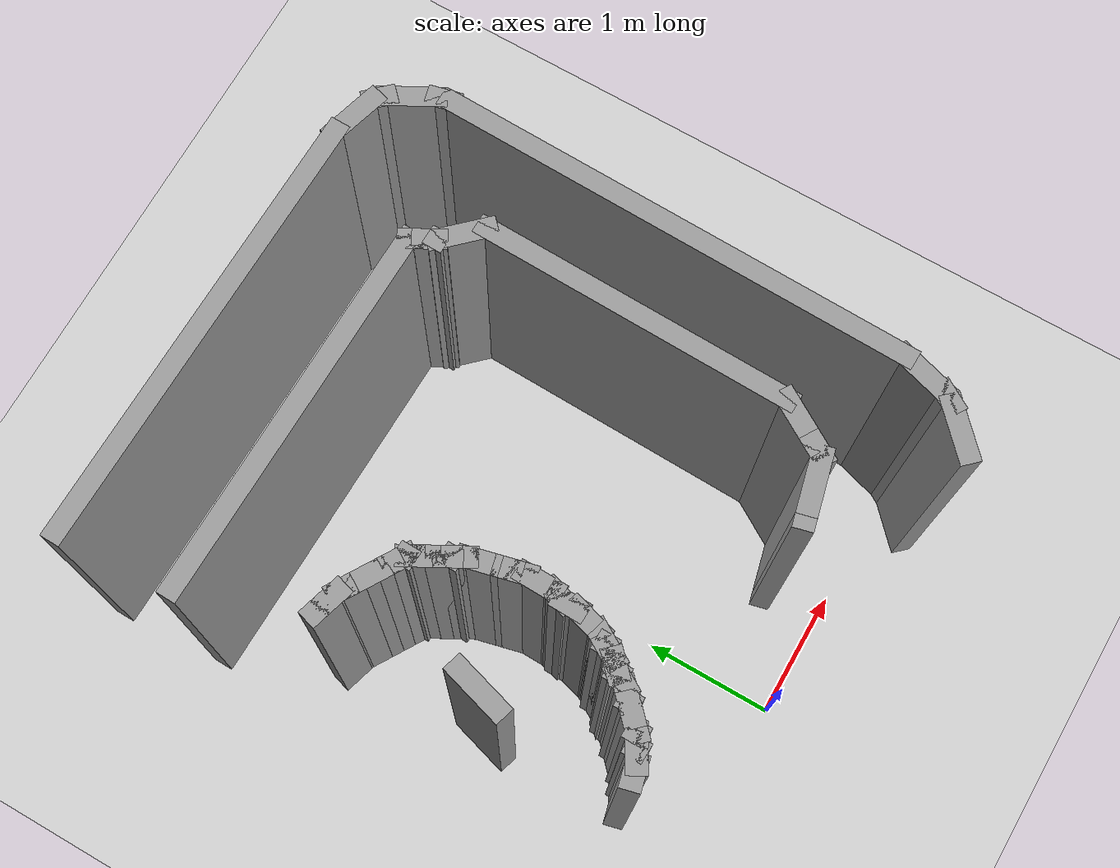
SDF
<sdf version="1.7">
 <world name="default">
  <model name="ground_plane">
   <static>1</static>
   <link name="link">
    <collision name="collision">
     <geometry><plane><normal>0 0 1</normal><size>100 100</size></plane></geometry>
     <surface>
      <contact><collide_bitmask>65535</collide_bitmask></contact>
      <friction><ode><mu>100</mu><mu2>50</mu2></ode></friction>
     </surface>
    </collision>
    <visual name="visual">
     <cast_shadows>0</cast_shadows>
     <geometry><plane><normal>0 0 1</normal><size>100 100</size></plane></geometry>
     <material>
      <script><uri>file://media/materials/scripts/gazebo.material</uri><name>Gazebo/Grey</name></script>
     </material>
    </visual>
   </link>
  </model>
  <model name="t11">
   <pose>-1.75336 2.18774 -0 0 -0 1.54563</pose>
   <link name="Wall_100">
    <collision name="Wall_100_Collision">
     <geometry><box><size>0.25 0.15 2.5</size></box></geometry>
     <pose>0 0 1.25 0 -0 0</pose>
    </collision>
    <visual name="Wall_100_Visual">
     <pose>0 0 1.25 0 -0 0</pose>
     <geometry><box><size>0.25 0.15 2.5</size></box></geometry>
     <material>
      <script><uri>file://media/materials/scripts/gazebo.material</uri><name>Gazebo/Grey</name></script>
      <ambient>1 1 1 1</ambient>
     </material>
     <meta><layer>0</layer></meta>
    </visual>
    <pose>0.204905 -1.11458 0 0 -0 -2.61799</pose>
   </link>
   <link name="Wall_101">
    <collision name="Wall_101_Collision">
     <geometry><box><size>0.15 0.15 2.5</size></box></geometry>
     <pose>0 0 1.25 0 -0 0</pose>
    </collision>
    <visual name="Wall_101_Visual">
     <pose>0 0 1.25 0 -0 0</pose>
     <geometry><box><size>0.15 0.15 2.5</size></box></geometry>
     <material>
      <script><uri>file://media/materials/scripts/gazebo.material</uri><name>Gazebo/Grey</name></script>
      <ambient>1 1 1 1</ambient>
     </material>
     <meta><layer>0</layer></meta>
    </visual>
    <pose>0.161604 -1.13958 0 0 -0 0</pose>
   </link>
   <link name="Wall_102">
    <collision name="Wall_102_Collision">
     <geometry><box><size>0.25 0.15 2.5</size></box></geometry>
     <pose>0 0 1.25 0 -0 0</pose>
    </collision>
    <visual name="Wall_102_Visual">
     <pose>0 0 1.25 0 -0 0</pose>
     <geometry><box><size>0.25 0.15 2.5</size></box></geometry>
     <material>
      <script><uri>file://media/materials/scripts/gazebo.material</uri><name>Gazebo/Grey</name></script>
      <ambient>1 1 1 1</ambient>
     </material>
     <meta><layer>0</layer></meta>
    </visual>
    <pose>0.118303 -1.16458 0 0 -0 -2.61799</pose>
   </link>
   <link name="Wall_103">
    <collision name="Wall_103_Collision">
     <geometry><box><size>0.25 0.15 2.5</size></box></geometry>
     <pose>0 0 1.25 0 -0 0</pose>
    </collision>
    <visual name="Wall_103_Visual">
     <pose>0 0 1.25 0 -0 0</pose>
     <geometry><box><size>0.25 0.15 2.5</size></box></geometry>
     <material>
      <script><uri>file://media/materials/scripts/gazebo.material</uri><name>Gazebo/Grey</name></script>
      <ambient>1 1 1 1</ambient>
     </material>
     <meta><layer>0</layer></meta>
    </visual>
    <pose>0.026705 -1.20252 0 0 -0 -2.87979</pose>
   </link>
   <link name="Wall_104">
    <collision name="Wall_104_Collision">
     <geometry><box><size>0.25 0.15 2.5</size></box></geometry>
     <pose>0 0 1.25 0 -0 0</pose>
    </collision>
    <visual name="Wall_104_Visual">
     <pose>0 0 1.25 0 -0 0</pose>
     <geometry><box><size>0.25 0.15 2.5</size></box></geometry>
     <material>
      <script><uri>file://media/materials/scripts/gazebo.material</uri><name>Gazebo/Grey</name></script>
      <ambient>1 1 1 1</ambient>
     </material>
     <meta><layer>0</layer></meta>
    </visual>
    <pose>-0.069887 -1.22841 0 0 -0 -2.87979</pose>
   </link>
   <link name="Wall_105">
    <collision name="Wall_105_Collision">
     <geometry><box><size>0.25 0.15 2.5</size></box></geometry>
     <pose>0 0 1.25 0 -0 0</pose>
    </collision>
    <visual name="Wall_105_Visual">
     <pose>0 0 1.25 0 -0 0</pose>
     <geometry><box><size>0.25 0.15 2.5</size></box></geometry>
     <material>
      <script><uri>file://media/materials/scripts/gazebo.material</uri><name>Gazebo/Grey</name></script>
      <ambient>1 1 1 1</ambient>
     </material>
     <meta><layer>0</layer></meta>
    </visual>
    <pose>-0.16648 -1.25429 0 0 -0 -2.87979</pose>
   </link>
   <link name="Wall_106">
    <collision name="Wall_106_Collision">
     <geometry><box><size>0.25 0.15 2.5</size></box></geometry>
     <pose>0 0 1.25 0 -0 0</pose>
    </collision>
    <visual name="Wall_106_Visual">
     <pose>0 0 1.25 0 -0 0</pose>
     <geometry><box><size>0.25 0.15 2.5</size></box></geometry>
     <material>
      <script><uri>file://media/materials/scripts/gazebo.material</uri><name>Gazebo/Grey</name></script>
      <ambient>1 1 1 1</ambient>
     </material>
     <meta><layer>0</layer></meta>
    </visual>
    <pose>-0.263072 -1.28017 0 0 -0 -2.87979</pose>
   </link>
   <link name="Wall_107">
    <collision name="Wall_107_Collision">
     <geometry><box><size>0.25 0.15 2.5</size></box></geometry>
     <pose>0 0 1.25 0 -0 0</pose>
    </collision>
    <visual name="Wall_107_Visual">
     <pose>0 0 1.25 0 -0 0</pose>
     <geometry><box><size>0.25 0.15 2.5</size></box></geometry>
     <material>
      <script><uri>file://media/materials/scripts/gazebo.material</uri><name>Gazebo/Grey</name></script>
      <ambient>1 1 1 1</ambient>
     </material>
     <meta><layer>0</layer></meta>
    </visual>
    <pose>-0.361369 -1.29311 0 0 -0 3.14159</pose>
   </link>
   <link name="Wall_108">
    <collision name="Wall_108_Collision">
     <geometry><box><size>0.25 0.15 2.5</size></box></geometry>
     <pose>0 0 1.25 0 -0 0</pose>
    </collision>
    <visual name="Wall_108_Visual">
     <pose>0 0 1.25 0 -0 0</pose>
     <geometry><box><size>0.25 0.15 2.5</size></box></geometry>
     <material>
      <script><uri>file://media/materials/scripts/gazebo.material</uri><name>Gazebo/Grey</name></script>
      <ambient>1 1 1 1</ambient>
     </material>
     <meta><layer>0</layer></meta>
    </visual>
    <pose>-0.461369 -1.29311 0 0 -0 3.14159</pose>
   </link>
   <link name="Wall_109">
    <collision name="Wall_109_Collision">
     <geometry><box><size>0.25 0.15 2.5</size></box></geometry>
     <pose>0 0 1.25 0 -0 0</pose>
    </collision>
    <visual name="Wall_109_Visual">
     <pose>0 0 1.25 0 -0 0</pose>
     <geometry><box><size>0.25 0.15 2.5</size></box></geometry>
     <material>
      <script><uri>file://media/materials/scripts/gazebo.material</uri><name>Gazebo/Grey</name></script>
      <ambient>1 1 1 1</ambient>
     </material>
     <meta><layer>0</layer></meta>
    </visual>
    <pose>-0.559665 -1.28017 0 0 -0 2.87979</pose>
   </link>
   <link name="Wall_110">
    <collision name="Wall_110_Collision">
     <geometry><box><size>0.25 0.15 2.5</size></box></geometry>
     <pose>0 0 1.25 0 -0 0</pose>
    </collision>
    <visual name="Wall_110_Visual">
     <pose>0 0 1.25 0 -0 0</pose>
     <geometry><box><size>0.25 0.15 2.5</size></box></geometry>
     <material>
      <script><uri>file://media/materials/scripts/gazebo.material</uri><name>Gazebo/Grey</name></script>
      <ambient>1 1 1 1</ambient>
     </material>
     <meta><layer>0</layer></meta>
    </visual>
    <pose>-0.657961 -1.26723 0 0 -0 3.14159</pose>
   </link>
   <link name="Wall_111">
    <collision name="Wall_111_Collision">
     <geometry><box><size>0.25 0.15 2.5</size></box></geometry>
     <pose>0 0 1.25 0 -0 0</pose>
    </collision>
    <visual name="Wall_111_Visual">
     <pose>0 0 1.25 0 -0 0</pose>
     <geometry><box><size>0.25 0.15 2.5</size></box></geometry>
     <material>
      <script><uri>file://media/materials/scripts/gazebo.material</uri><name>Gazebo/Grey</name></script>
      <ambient>1 1 1 1</ambient>
     </material>
     <meta><layer>0</layer></meta>
    </visual>
    <pose>-0.756258 -1.25429 0 0 -0 2.87979</pose>
   </link>
   <link name="Wall_112">
    <collision name="Wall_112_Collision">
     <geometry><box><size>0.25 0.15 2.5</size></box></geometry>
     <pose>0 0 1.25 0 -0 0</pose>
    </collision>
    <visual name="Wall_112_Visual">
     <pose>0 0 1.25 0 -0 0</pose>
     <geometry><box><size>0.25 0.15 2.5</size></box></geometry>
     <material>
      <script><uri>file://media/materials/scripts/gazebo.material</uri><name>Gazebo/Grey</name></script>
      <ambient>1 1 1 1</ambient>
     </material>
     <meta><layer>0</layer></meta>
    </visual>
    <pose>-0.85285 -1.22841 0 0 -0 2.87979</pose>
   </link>
   <link name="Wall_113">
    <collision name="Wall_113_Collision">
     <geometry><box><size>0.25 0.15 2.5</size></box></geometry>
     <pose>0 0 1.25 0 -0 0</pose>
    </collision>
    <visual name="Wall_113_Visual">
     <pose>0 0 1.25 0 -0 0</pose>
     <geometry><box><size>0.25 0.15 2.5</size></box></geometry>
     <material>
      <script><uri>file://media/materials/scripts/gazebo.material</uri><name>Gazebo/Grey</name></script>
      <ambient>1 1 1 1</ambient>
     </material>
     <meta><layer>0</layer></meta>
    </visual>
    <pose>-0.944448 -1.19047 0 0 -0 2.61799</pose>
   </link>
   <link name="Wall_114">
    <collision name="Wall_114_Collision">
     <geometry><box><size>0.15 0.15 2.5</size></box></geometry>
     <pose>0 0 1.25 0 -0 0</pose>
    </collision>
    <visual name="Wall_114_Visual">
     <pose>0 0 1.25 0 -0 0</pose>
     <geometry><box><size>0.15 0.15 2.5</size></box></geometry>
     <material>
      <script><uri>file://media/materials/scripts/gazebo.material</uri><name>Gazebo/Grey</name></script>
      <ambient>1 1 1 1</ambient>
     </material>
     <meta><layer>0</layer></meta>
    </visual>
    <pose>-0.987749 -1.16546 0 0 -0 0</pose>
   </link>
   <link name="Wall_115">
    <collision name="Wall_115_Collision">
     <geometry><box><size>0.25 0.15 2.5</size></box></geometry>
     <pose>0 0 1.25 0 -0 0</pose>
    </collision>
    <visual name="Wall_115_Visual">
     <pose>0 0 1.25 0 -0 0</pose>
     <geometry><box><size>0.25 0.15 2.5</size></box></geometry>
     <material>
      <script><uri>file://media/materials/scripts/gazebo.material</uri><name>Gazebo/Grey</name></script>
      <ambient>1 1 1 1</ambient>
     </material>
     <meta><layer>0</layer></meta>
    </visual>
    <pose>-1.03105 -1.14047 0 0 -0 2.61799</pose>
   </link>
   <link name="Wall_116">
    <collision name="Wall_116_Collision">
     <geometry><box><size>0.25 0.15 2.5</size></box></geometry>
     <pose>0 0 1.25 0 -0 0</pose>
    </collision>
    <visual name="Wall_116_Visual">
     <pose>0 0 1.25 0 -0 0</pose>
     <geometry><box><size>0.25 0.15 2.5</size></box></geometry>
     <material>
      <script><uri>file://media/materials/scripts/gazebo.material</uri><name>Gazebo/Grey</name></script>
      <ambient>1 1 1 1</ambient>
     </material>
     <meta><layer>0</layer></meta>
    </visual>
    <pose>-1.10971 -1.08011 0 0 -0 2.35619</pose>
   </link>
   <link name="Wall_117">
    <collision name="Wall_117_Collision">
     <geometry><box><size>0.15 0.15 2.5</size></box></geometry>
     <pose>0 0 1.25 0 -0 0</pose>
    </collision>
    <visual name="Wall_117_Visual">
     <pose>0 0 1.25 0 -0 0</pose>
     <geometry><box><size>0.15 0.15 2.5</size></box></geometry>
     <material>
      <script><uri>file://media/materials/scripts/gazebo.material</uri><name>Gazebo/Grey</name></script>
      <ambient>1 1 1 1</ambient>
     </material>
     <meta><layer>0</layer></meta>
    </visual>
    <pose>-1.14506 -1.04476 0 0 -0 0</pose>
   </link>
   <link name="Wall_118">
    <collision name="Wall_118_Collision">
     <geometry><box><size>0.15 0.15 2.5</size></box></geometry>
     <pose>0 0 1.25 0 -0 0</pose>
    </collision>
    <visual name="Wall_118_Visual">
     <pose>0 0 1.25 0 -0 0</pose>
     <geometry><box><size>0.15 0.15 2.5</size></box></geometry>
     <material>
      <script><uri>file://media/materials/scripts/gazebo.material</uri><name>Gazebo/Grey</name></script>
      <ambient>1 1 1 1</ambient>
     </material>
     <meta><layer>0</layer></meta>
    </visual>
    <pose>-1.14506 -1.04476 0 0 -0 0</pose>
   </link>
   <link name="Wall_119">
    <collision name="Wall_119_Collision">
     <geometry><box><size>0.25 0.15 2.5</size></box></geometry>
     <pose>0 0 1.25 0 -0 0</pose>
    </collision>
    <visual name="Wall_119_Visual">
     <pose>0 0 1.25 0 -0 0</pose>
     <geometry><box><size>0.25 0.15 2.5</size></box></geometry>
     <material>
      <script><uri>file://media/materials/scripts/gazebo.material</uri><name>Gazebo/Grey</name></script>
      <ambient>1 1 1 1</ambient>
     </material>
     <meta><layer>0</layer></meta>
    </visual>
    <pose>-1.18836 -1.01975 0 0 -0 2.61799</pose>
   </link>
   <link name="Wall_120">
    <collision name="Wall_120_Collision">
     <geometry><box><size>0.25 0.15 2.5</size></box></geometry>
     <pose>0 0 1.25 0 -0 0</pose>
    </collision>
    <visual name="Wall_120_Visual">
     <pose>0 0 1.25 0 -0 0</pose>
     <geometry><box><size>0.25 0.15 2.5</size></box></geometry>
     <material>
      <script><uri>file://media/materials/scripts/gazebo.material</uri><name>Gazebo/Grey</name></script>
      <ambient>1 1 1 1</ambient>
     </material>
     <meta><layer>0</layer></meta>
    </visual>
    <pose>-1.26702 -0.959399 0 0 -0 2.35619</pose>
   </link>
   <link name="Wall_121">
    <collision name="Wall_121_Collision">
     <geometry><box><size>0.15 0.15 2.5</size></box></geometry>
     <pose>0 0 1.25 0 -0 0</pose>
    </collision>
    <visual name="Wall_121_Visual">
     <pose>0 0 1.25 0 -0 0</pose>
     <geometry><box><size>0.15 0.15 2.5</size></box></geometry>
     <material>
      <script><uri>file://media/materials/scripts/gazebo.material</uri><name>Gazebo/Grey</name></script>
      <ambient>1 1 1 1</ambient>
     </material>
     <meta><layer>0</layer></meta>
    </visual>
    <pose>-1.30238 -0.924044 0 0 -0 0</pose>
   </link>
   <link name="Wall_122">
    <collision name="Wall_122_Collision">
     <geometry><box><size>0.25 0.15 2.5</size></box></geometry>
     <pose>0 0 1.25 0 -0 0</pose>
    </collision>
    <visual name="Wall_122_Visual">
     <pose>0 0 1.25 0 -0 0</pose>
     <geometry><box><size>0.25 0.15 2.5</size></box></geometry>
     <material>
      <script><uri>file://media/materials/scripts/gazebo.material</uri><name>Gazebo/Grey</name></script>
      <ambient>1 1 1 1</ambient>
     </material>
     <meta><layer>0</layer></meta>
    </visual>
    <pose>-1.33773 -0.888689 0 0 -0 2.35619</pose>
   </link>
   <link name="Wall_123">
    <collision name="Wall_123_Collision">
     <geometry><box><size>0.25 0.15 2.5</size></box></geometry>
     <pose>0 0 1.25 0 -0 0</pose>
    </collision>
    <visual name="Wall_123_Visual">
     <pose>0 0 1.25 0 -0 0</pose>
     <geometry><box><size>0.25 0.15 2.5</size></box></geometry>
     <material>
      <script><uri>file://media/materials/scripts/gazebo.material</uri><name>Gazebo/Grey</name></script>
      <ambient>1 1 1 1</ambient>
     </material>
     <meta><layer>0</layer></meta>
    </visual>
    <pose>-1.40844 -0.817978 0 0 -0 2.35619</pose>
   </link>
   <link name="Wall_124">
    <collision name="Wall_124_Collision">
     <geometry><box><size>0.15 0.15 2.5</size></box></geometry>
     <pose>0 0 1.25 0 -0 0</pose>
    </collision>
    <visual name="Wall_124_Visual">
     <pose>0 0 1.25 0 -0 0</pose>
     <geometry><box><size>0.15 0.15 2.5</size></box></geometry>
     <material>
      <script><uri>file://media/materials/scripts/gazebo.material</uri><name>Gazebo/Grey</name></script>
      <ambient>1 1 1 1</ambient>
     </material>
     <meta><layer>0</layer></meta>
    </visual>
    <pose>-1.4438 -0.782623 0 0 -0 0</pose>
   </link>
   <link name="Wall_125">
    <collision name="Wall_125_Collision">
     <geometry><box><size>0.25 0.15 2.5</size></box></geometry>
     <pose>0 0 1.25 0 -0 0</pose>
    </collision>
    <visual name="Wall_125_Visual">
     <pose>0 0 1.25 0 -0 0</pose>
     <geometry><box><size>0.25 0.15 2.5</size></box></geometry>
     <material>
      <script><uri>file://media/materials/scripts/gazebo.material</uri><name>Gazebo/Grey</name></script>
      <ambient>1 1 1 1</ambient>
     </material>
     <meta><layer>0</layer></meta>
    </visual>
    <pose>-1.4688 -0.739321 0 0 -0 2.0944</pose>
   </link>
   <link name="Wall_126">
    <collision name="Wall_126_Collision">
     <geometry><box><size>0.15 0.15 2.5</size></box></geometry>
     <pose>0 0 1.25 0 -0 0</pose>
    </collision>
    <visual name="Wall_126_Visual">
     <pose>0 0 1.25 0 -0 0</pose>
     <geometry><box><size>0.15 0.15 2.5</size></box></geometry>
     <material>
      <script><uri>file://media/materials/scripts/gazebo.material</uri><name>Gazebo/Grey</name></script>
      <ambient>1 1 1 1</ambient>
     </material>
     <meta><layer>0</layer></meta>
    </visual>
    <pose>-1.4938 -0.69602 0 0 -0 0</pose>
   </link>
   <link name="Wall_127">
    <collision name="Wall_127_Collision">
     <geometry><box><size>0.25 0.15 2.5</size></box></geometry>
     <pose>0 0 1.25 0 -0 0</pose>
    </collision>
    <visual name="Wall_127_Visual">
     <pose>0 0 1.25 0 -0 0</pose>
     <geometry><box><size>0.25 0.15 2.5</size></box></geometry>
     <material>
      <script><uri>file://media/materials/scripts/gazebo.material</uri><name>Gazebo/Grey</name></script>
      <ambient>1 1 1 1</ambient>
     </material>
     <meta><layer>0</layer></meta>
    </visual>
    <pose>-1.5188 -0.652719 0 0 -0 2.0944</pose>
   </link>
   <link name="Wall_128">
    <collision name="Wall_128_Collision">
     <geometry><box><size>0.25 0.15 2.5</size></box></geometry>
     <pose>0 0 1.25 0 -0 0</pose>
    </collision>
    <visual name="Wall_128_Visual">
     <pose>0 0 1.25 0 -0 0</pose>
     <geometry><box><size>0.25 0.15 2.5</size></box></geometry>
     <material>
      <script><uri>file://media/materials/scripts/gazebo.material</uri><name>Gazebo/Grey</name></script>
      <ambient>1 1 1 1</ambient>
     </material>
     <meta><layer>0</layer></meta>
    </visual>
    <pose>-1.55674 -0.561121 0 0 -0 1.8326</pose>
   </link>
   <link name="Wall_13">
    <collision name="Wall_13_Collision">
     <geometry><box><size>0.5 0.15 2.5</size></box></geometry>
     <pose>0 0 1.25 0 -0 0</pose>
    </collision>
    <visual name="Wall_13_Visual">
     <pose>0 0 1.25 0 -0 0</pose>
     <geometry><box><size>0.5 0.15 2.5</size></box></geometry>
     <material>
      <script><uri>file://media/materials/scripts/gazebo.material</uri><name>Gazebo/Grey</name></script>
      <ambient>1 1 1 1</ambient>
     </material>
     <meta><layer>0</layer></meta>
    </visual>
    <pose>-0.437772 -0.493754 0 0 -0 -0.261799</pose>
   </link>
   <link name="Wall_24">
    <collision name="Wall_24_Collision">
     <geometry><box><size>3.5 0.15 2.5</size></box></geometry>
     <pose>0 0 1.25 0 -0 0</pose>
    </collision>
    <visual name="Wall_24_Visual">
     <pose>0 0 1.25 0 -0 0</pose>
     <geometry><box><size>3.5 0.15 2.5</size></box></geometry>
     <material>
      <script><uri>file://media/materials/scripts/gazebo.material</uri><name>Gazebo/Grey</name></script>
      <ambient>1 1 1 1</ambient>
     </material>
     <meta><layer>0</layer></meta>
    </visual>
    <pose>2.45792 -1.6104 0 0 -0 -1.5708</pose>
   </link>
   <link name="Wall_25">
    <collision name="Wall_25_Collision">
     <geometry><box><size>0.5 0.15 2.5</size></box></geometry>
     <pose>0 0 1.25 0 -0 0</pose>
    </collision>
    <visual name="Wall_25_Visual">
     <pose>0 0 1.25 0 -0 0</pose>
     <geometry><box><size>0.5 0.15 2.5</size></box></geometry>
     <material>
      <script><uri>file://media/materials/scripts/gazebo.material</uri><name>Gazebo/Grey</name></script>
      <ambient>1 1 1 1</ambient>
     </material>
     <meta><layer>0</layer></meta>
    </visual>
    <pose>2.41262 -3.45444 0 0 -0 -1.8326</pose>
   </link>
   <link name="Wall_26">
    <collision name="Wall_26_Collision">
     <geometry><box><size>0.25 0.15 2.5</size></box></geometry>
     <pose>0 0 1.25 0 -0 0</pose>
    </collision>
    <visual name="Wall_26_Visual">
     <pose>0 0 1.25 0 -0 0</pose>
     <geometry><box><size>0.25 0.15 2.5</size></box></geometry>
     <material>
      <script><uri>file://media/materials/scripts/gazebo.material</uri><name>Gazebo/Grey</name></script>
      <ambient>1 1 1 1</ambient>
     </material>
     <meta><layer>0</layer></meta>
    </visual>
    <pose>2.33197 -3.65883 0 0 -0 -2.35619</pose>
   </link>
   <link name="Wall_27">
    <collision name="Wall_27_Collision">
     <geometry><box><size>0.5 0.15 2.5</size></box></geometry>
     <pose>0 0 1.25 0 -0 0</pose>
    </collision>
    <visual name="Wall_27_Visual">
     <pose>0 0 1.25 0 -0 0</pose>
     <geometry><box><size>0.5 0.15 2.5</size></box></geometry>
     <material>
      <script><uri>file://media/materials/scripts/gazebo.material</uri><name>Gazebo/Grey</name></script>
      <ambient>1 1 1 1</ambient>
     </material>
     <meta><layer>0</layer></meta>
    </visual>
    <pose>2.14506 -3.78169 0 0 -0 -2.61799</pose>
   </link>
   <link name="Wall_28">
    <collision name="Wall_28_Collision">
     <geometry><box><size>0.25 0.15 2.5</size></box></geometry>
     <pose>0 0 1.25 0 -0 0</pose>
    </collision>
    <visual name="Wall_28_Visual">
     <pose>0 0 1.25 0 -0 0</pose>
     <geometry><box><size>0.25 0.15 2.5</size></box></geometry>
     <material>
      <script><uri>file://media/materials/scripts/gazebo.material</uri><name>Gazebo/Grey</name></script>
      <ambient>1 1 1 1</ambient>
     </material>
     <meta><layer>0</layer></meta>
    </visual>
    <pose>1.94521 -3.88213 0 0 -0 -2.87979</pose>
   </link>
   <link name="Wall_29">
    <collision name="Wall_29_Collision">
     <geometry><box><size>3.75 0.15 2.5</size></box></geometry>
     <pose>0 0 1.25 0 -0 0</pose>
    </collision>
    <visual name="Wall_29_Visual">
     <pose>0 0 1.25 0 -0 0</pose>
     <geometry><box><size>3.75 0.15 2.5</size></box></geometry>
     <material>
      <script><uri>file://media/materials/scripts/gazebo.material</uri><name>Gazebo/Grey</name></script>
      <ambient>1 1 1 1</ambient>
     </material>
     <meta><layer>0</layer></meta>
    </visual>
    <pose>0.096917 -3.89507 0 0 -0 3.14159</pose>
   </link>
   <link name="Wall_30">
    <collision name="Wall_30_Collision">
     <geometry><box><size>0.5 0.15 2.5</size></box></geometry>
     <pose>0 0 1.25 0 -0 0</pose>
    </collision>
    <visual name="Wall_30_Visual">
     <pose>0 0 1.25 0 -0 0</pose>
     <geometry><box><size>0.5 0.15 2.5</size></box></geometry>
     <material>
      <script><uri>file://media/materials/scripts/gazebo.material</uri><name>Gazebo/Grey</name></script>
      <ambient>1 1 1 1</ambient>
     </material>
     <meta><layer>0</layer></meta>
    </visual>
    <pose>-1.87212 -3.84978 0 0 -0 2.87979</pose>
   </link>
   <link name="Wall_31">
    <collision name="Wall_31_Collision">
     <geometry><box><size>0.25 0.15 2.5</size></box></geometry>
     <pose>0 0 1.25 0 -0 0</pose>
    </collision>
    <visual name="Wall_31_Visual">
     <pose>0 0 1.25 0 -0 0</pose>
     <geometry><box><size>0.25 0.15 2.5</size></box></geometry>
     <material>
      <script><uri>file://media/materials/scripts/gazebo.material</uri><name>Gazebo/Grey</name></script>
      <ambient>1 1 1 1</ambient>
     </material>
     <meta><layer>0</layer></meta>
    </visual>
    <pose>-2.08446 -3.77948 0 0 -0 2.61799</pose>
   </link>
   <link name="Wall_32">
    <collision name="Wall_32_Collision">
     <geometry><box><size>0.5 0.15 2.5</size></box></geometry>
     <pose>0 0 1.25 0 -0 0</pose>
    </collision>
    <visual name="Wall_32_Visual">
     <pose>0 0 1.25 0 -0 0</pose>
     <geometry><box><size>0.5 0.15 2.5</size></box></geometry>
     <material>
      <script><uri>file://media/materials/scripts/gazebo.material</uri><name>Gazebo/Grey</name></script>
      <ambient>1 1 1 1</ambient>
     </material>
     <meta><layer>0</layer></meta>
    </visual>
    <pose>-2.2515 -3.63074 0 0 -0 2.35619</pose>
   </link>
   <link name="Wall_59">
    <collision name="Wall_59_Collision">
     <geometry><box><size>0.25 0.15 2.5</size></box></geometry>
     <pose>0 0 1.25 0 -0 0</pose>
    </collision>
    <visual name="Wall_59_Visual">
     <pose>0 0 1.25 0 -0 0</pose>
     <geometry><box><size>0.25 0.15 2.5</size></box></geometry>
     <material>
      <script><uri>file://media/materials/scripts/gazebo.material</uri><name>Gazebo/Grey</name></script>
      <ambient>1 1 1 1</ambient>
     </material>
     <meta><layer>0</layer></meta>
    </visual>
    <pose>-1.66529 -2.60382 0 0 -0 -1.309</pose>
   </link>
   <link name="Wall_60">
    <collision name="Wall_60_Collision">
     <geometry><box><size>0.5 0.15 2.5</size></box></geometry>
     <pose>0 0 1.25 0 -0 0</pose>
    </collision>
    <visual name="Wall_60_Visual">
     <pose>0 0 1.25 0 -0 0</pose>
     <geometry><box><size>0.5 0.15 2.5</size></box></geometry>
     <material>
      <script><uri>file://media/materials/scripts/gazebo.material</uri><name>Gazebo/Grey</name></script>
      <ambient>1 1 1 1</ambient>
     </material>
     <meta><layer>0</layer></meta>
    </visual>
    <pose>-1.60705 -2.82116 0 0 -0 -1.309</pose>
   </link>
   <link name="Wall_61">
    <collision name="Wall_61_Collision">
     <geometry><box><size>0.25 0.15 2.5</size></box></geometry>
     <pose>0 0 1.25 0 -0 0</pose>
    </collision>
    <visual name="Wall_61_Visual">
     <pose>0 0 1.25 0 -0 0</pose>
     <geometry><box><size>0.25 0.15 2.5</size></box></geometry>
     <material>
      <script><uri>file://media/materials/scripts/gazebo.material</uri><name>Gazebo/Grey</name></script>
      <ambient>1 1 1 1</ambient>
     </material>
     <meta><layer>0</layer></meta>
    </visual>
    <pose>-1.51846 -3.01519 0 0 -0 -0.523599</pose>
   </link>
   <link name="Wall_62">
    <collision name="Wall_62_Collision">
     <geometry><box><size>0.5 0.15 2.5</size></box></geometry>
     <pose>0 0 1.25 0 -0 0</pose>
    </collision>
    <visual name="Wall_62_Visual">
     <pose>0 0 1.25 0 -0 0</pose>
     <geometry><box><size>0.5 0.15 2.5</size></box></geometry>
     <material>
      <script><uri>file://media/materials/scripts/gazebo.material</uri><name>Gazebo/Grey</name></script>
      <ambient>1 1 1 1</ambient>
     </material>
     <meta><layer>0</layer></meta>
    </visual>
    <pose>-1.3236 -3.12769 0 0 -0 -0.523599</pose>
   </link>
   <link name="Wall_63">
    <collision name="Wall_63_Collision">
     <geometry><box><size>2.5 0.15 2.5</size></box></geometry>
     <pose>0 0 1.25 0 -0 0</pose>
    </collision>
    <visual name="Wall_63_Visual">
     <pose>0 0 1.25 0 -0 0</pose>
     <geometry><box><size>2.5 0.15 2.5</size></box></geometry>
     <material>
      <script><uri>file://media/materials/scripts/gazebo.material</uri><name>Gazebo/Grey</name></script>
      <ambient>1 1 1 1</ambient>
     </material>
     <meta><layer>0</layer></meta>
    </visual>
    <pose>0.00295 -3.21519 0 0 -0 0</pose>
   </link>
   <link name="Wall_65">
    <collision name="Wall_65_Collision">
     <geometry><box><size>0.15 0.15 2.5</size></box></geometry>
     <pose>0 0 1.25 0 -0 0</pose>
    </collision>
    <visual name="Wall_65_Visual">
     <pose>0 0 1.25 0 -0 0</pose>
     <geometry><box><size>0.15 0.15 2.5</size></box></geometry>
     <material>
      <script><uri>file://media/materials/scripts/gazebo.material</uri><name>Gazebo/Grey</name></script>
      <ambient>1 1 1 1</ambient>
     </material>
     <meta><layer>0</layer></meta>
    </visual>
    <pose>1.42544 -2.96771 0 0 -0 0</pose>
   </link>
   <link name="Wall_68">
    <collision name="Wall_68_Collision">
     <geometry><box><size>0.5 0.15 2.5</size></box></geometry>
     <pose>0 0 1.25 0 -0 0</pose>
    </collision>
    <visual name="Wall_68_Visual">
     <pose>0 0 1.25 0 -0 0</pose>
     <geometry><box><size>0.5 0.15 2.5</size></box></geometry>
     <material>
      <script><uri>file://media/materials/scripts/gazebo.material</uri><name>Gazebo/Grey</name></script>
      <ambient>1 1 1 1</ambient>
     </material>
     <meta><layer>0</layer></meta>
    </visual>
    <pose>1.30169 -3.09145 0 0 -0 0.785398</pose>
   </link>
   <link name="Wall_69">
    <collision name="Wall_69_Collision">
     <geometry><box><size>0.25 0.15 2.5</size></box></geometry>
     <pose>0 0 1.25 0 -0 0</pose>
    </collision>
    <visual name="Wall_69_Visual">
     <pose>0 0 1.25 0 -0 0</pose>
     <geometry><box><size>0.25 0.15 2.5</size></box></geometry>
     <material>
      <script><uri>file://media/materials/scripts/gazebo.material</uri><name>Gazebo/Grey</name></script>
      <ambient>1 1 1 1</ambient>
     </material>
     <meta><layer>0</layer></meta>
    </visual>
    <pose>1.46874 -2.94271 0 0 -0 0.523599</pose>
   </link>
   <link name="Wall_70">
    <collision name="Wall_70_Collision">
     <geometry><box><size>0.25 0.15 2.5</size></box></geometry>
     <pose>0 0 1.25 0 -0 0</pose>
    </collision>
    <visual name="Wall_70_Visual">
     <pose>0 0 1.25 0 -0 0</pose>
     <geometry><box><size>0.25 0.15 2.5</size></box></geometry>
     <material>
      <script><uri>file://media/materials/scripts/gazebo.material</uri><name>Gazebo/Grey</name></script>
      <ambient>1 1 1 1</ambient>
     </material>
     <meta><layer>0</layer></meta>
    </visual>
    <pose>1.55534 -2.89271 0 0 -0 0.523599</pose>
   </link>
   <link name="Wall_71">
    <collision name="Wall_71_Collision">
     <geometry><box><size>0.25 0.15 2.5</size></box></geometry>
     <pose>0 0 1.25 0 -0 0</pose>
    </collision>
    <visual name="Wall_71_Visual">
     <pose>0 0 1.25 0 -0 0</pose>
     <geometry><box><size>0.25 0.15 2.5</size></box></geometry>
     <material>
      <script><uri>file://media/materials/scripts/gazebo.material</uri><name>Gazebo/Grey</name></script>
      <ambient>1 1 1 1</ambient>
     </material>
     <meta><layer>0</layer></meta>
    </visual>
    <pose>1.55534 -2.89271 0 0 -0 -2.61799</pose>
   </link>
   <link name="Wall_73">
    <collision name="Wall_73_Collision">
     <geometry><box><size>3 0.15 2.5</size></box></geometry>
     <pose>0 0 1.25 0 -0 0</pose>
    </collision>
    <visual name="Wall_73_Visual">
     <pose>0 0 1.25 0 -0 0</pose>
     <geometry><box><size>3 0.15 2.5</size></box></geometry>
     <material>
      <script><uri>file://media/materials/scripts/gazebo.material</uri><name>Gazebo/Grey</name></script>
      <ambient>1 1 1 1</ambient>
     </material>
     <meta><layer>0</layer></meta>
    </visual>
    <pose>1.59864 -1.44271 0 0 -0 1.5708</pose>
   </link>
   <link name="Wall_90">
    <collision name="Wall_90_Collision">
     <geometry><box><size>0.25 0.15 2.5</size></box></geometry>
     <pose>0 0 1.25 0 -0 0</pose>
    </collision>
    <visual name="Wall_90_Visual">
     <pose>0 0 1.25 0 -0 0</pose>
     <geometry><box><size>0.25 0.15 2.5</size></box></geometry>
     <material>
      <script><uri>file://media/materials/scripts/gazebo.material</uri><name>Gazebo/Grey</name></script>
      <ambient>1 1 1 1</ambient>
     </material>
     <meta><layer>0</layer></meta>
    </visual>
    <pose>0.710235 -0.411682 0 0 -0 -1.8326</pose>
   </link>
   <link name="Wall_91">
    <collision name="Wall_91_Collision">
     <geometry><box><size>0.25 0.15 2.5</size></box></geometry>
     <pose>0 0 1.25 0 -0 0</pose>
    </collision>
    <visual name="Wall_91_Visual">
     <pose>0 0 1.25 0 -0 0</pose>
     <geometry><box><size>0.25 0.15 2.5</size></box></geometry>
     <material>
      <script><uri>file://media/materials/scripts/gazebo.material</uri><name>Gazebo/Grey</name></script>
      <ambient>1 1 1 1</ambient>
     </material>
     <meta><layer>0</layer></meta>
    </visual>
    <pose>0.684353 -0.508274 0 0 -0 -1.8326</pose>
   </link>
   <link name="Wall_92">
    <collision name="Wall_92_Collision">
     <geometry><box><size>0.25 0.15 2.5</size></box></geometry>
     <pose>0 0 1.25 0 -0 0</pose>
    </collision>
    <visual name="Wall_92_Visual">
     <pose>0 0 1.25 0 -0 0</pose>
     <geometry><box><size>0.25 0.15 2.5</size></box></geometry>
     <material>
      <script><uri>file://media/materials/scripts/gazebo.material</uri><name>Gazebo/Grey</name></script>
      <ambient>1 1 1 1</ambient>
     </material>
     <meta><layer>0</layer></meta>
    </visual>
    <pose>0.646412 -0.599872 0 0 -0 -2.0944</pose>
   </link>
   <link name="Wall_93">
    <collision name="Wall_93_Collision">
     <geometry><box><size>0.25 0.15 2.5</size></box></geometry>
     <pose>0 0 1.25 0 -0 0</pose>
    </collision>
    <visual name="Wall_93_Visual">
     <pose>0 0 1.25 0 -0 0</pose>
     <geometry><box><size>0.25 0.15 2.5</size></box></geometry>
     <material>
      <script><uri>file://media/materials/scripts/gazebo.material</uri><name>Gazebo/Grey</name></script>
      <ambient>1 1 1 1</ambient>
     </material>
     <meta><layer>0</layer></meta>
    </visual>
    <pose>0.596412 -0.686475 0 0 -0 -2.0944</pose>
   </link>
   <link name="Wall_94">
    <collision name="Wall_94_Collision">
     <geometry><box><size>0.25 0.15 2.5</size></box></geometry>
     <pose>0 0 1.25 0 -0 0</pose>
    </collision>
    <visual name="Wall_94_Visual">
     <pose>0 0 1.25 0 -0 0</pose>
     <geometry><box><size>0.25 0.15 2.5</size></box></geometry>
     <material>
      <script><uri>file://media/materials/scripts/gazebo.material</uri><name>Gazebo/Grey</name></script>
      <ambient>1 1 1 1</ambient>
     </material>
     <meta><layer>0</layer></meta>
    </visual>
    <pose>0.546412 -0.773077 0 0 -0 -2.0944</pose>
   </link>
   <link name="Wall_95">
    <collision name="Wall_95_Collision">
     <geometry><box><size>0.25 0.15 2.5</size></box></geometry>
     <pose>0 0 1.25 0 -0 0</pose>
    </collision>
    <visual name="Wall_95_Visual">
     <pose>0 0 1.25 0 -0 0</pose>
     <geometry><box><size>0.25 0.15 2.5</size></box></geometry>
     <material>
      <script><uri>file://media/materials/scripts/gazebo.material</uri><name>Gazebo/Grey</name></script>
      <ambient>1 1 1 1</ambient>
     </material>
     <meta><layer>0</layer></meta>
    </visual>
    <pose>0.496412 -0.85968 0 0 -0 -2.0944</pose>
   </link>
   <link name="Wall_96">
    <collision name="Wall_96_Collision">
     <geometry><box><size>0.25 0.15 2.5</size></box></geometry>
     <pose>0 0 1.25 0 -0 0</pose>
    </collision>
    <visual name="Wall_96_Visual">
     <pose>0 0 1.25 0 -0 0</pose>
     <geometry><box><size>0.25 0.15 2.5</size></box></geometry>
     <material>
      <script><uri>file://media/materials/scripts/gazebo.material</uri><name>Gazebo/Grey</name></script>
      <ambient>1 1 1 1</ambient>
     </material>
     <meta><layer>0</layer></meta>
    </visual>
    <pose>0.446412 -0.946282 0 0 -0 -2.0944</pose>
   </link>
   <link name="Wall_97">
    <collision name="Wall_97_Collision">
     <geometry><box><size>0.15 0.15 2.5</size></box></geometry>
     <pose>0 0 1.25 0 -0 0</pose>
    </collision>
    <visual name="Wall_97_Visual">
     <pose>0 0 1.25 0 -0 0</pose>
     <geometry><box><size>0.15 0.15 2.5</size></box></geometry>
     <material>
      <script><uri>file://media/materials/scripts/gazebo.material</uri><name>Gazebo/Grey</name></script>
      <ambient>1 1 1 1</ambient>
     </material>
     <meta><layer>0</layer></meta>
    </visual>
    <pose>0.421412 -0.989583 0 0 -0 0</pose>
   </link>
   <link name="Wall_98">
    <collision name="Wall_98_Collision">
     <geometry><box><size>0.25 0.15 2.5</size></box></geometry>
     <pose>0 0 1.25 0 -0 0</pose>
    </collision>
    <visual name="Wall_98_Visual">
     <pose>0 0 1.25 0 -0 0</pose>
     <geometry><box><size>0.25 0.15 2.5</size></box></geometry>
     <material>
      <script><uri>file://media/materials/scripts/gazebo.material</uri><name>Gazebo/Grey</name></script>
      <ambient>1 1 1 1</ambient>
     </material>
     <meta><layer>0</layer></meta>
    </visual>
    <pose>0.378111 -1.01458 0 0 -0 -2.61799</pose>
   </link>
   <link name="Wall_99">
    <collision name="Wall_99_Collision">
     <geometry><box><size>0.25 0.15 2.5</size></box></geometry>
     <pose>0 0 1.25 0 -0 0</pose>
    </collision>
    <visual name="Wall_99_Visual">
     <pose>0 0 1.25 0 -0 0</pose>
     <geometry><box><size>0.25 0.15 2.5</size></box></geometry>
     <material>
      <script><uri>file://media/materials/scripts/gazebo.material</uri><name>Gazebo/Grey</name></script>
      <ambient>1 1 1 1</ambient>
     </material>
     <meta><layer>0</layer></meta>
    </visual>
    <pose>0.291508 -1.06458 0 0 -0 -2.61799</pose>
   </link>
   <static>1</static>
  </model>
 </world>
</sdf>
